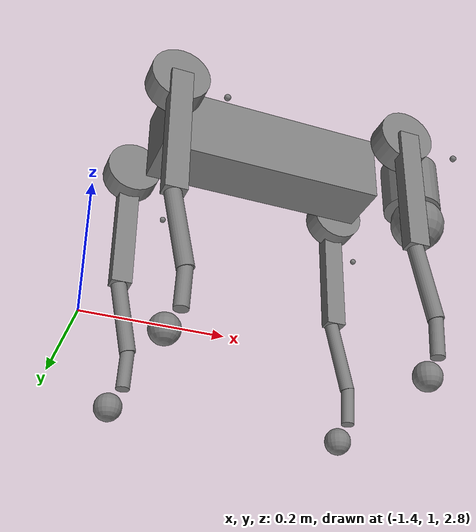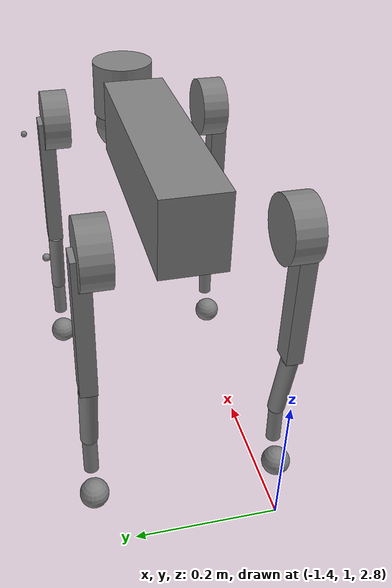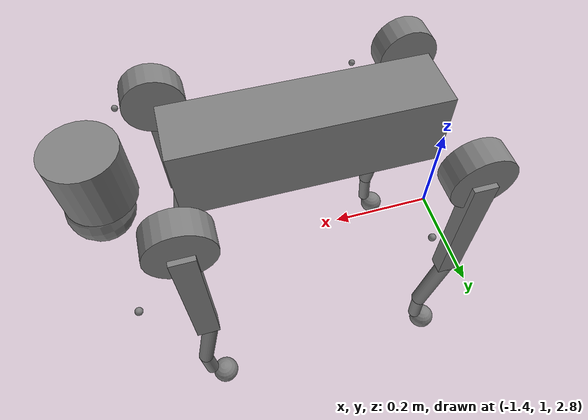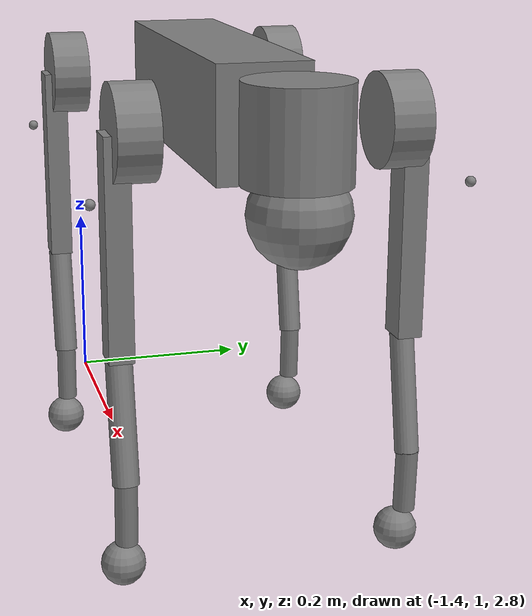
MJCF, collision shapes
<mujoco model="go2 scene">
  <include file="go2.xml"/>

  <statistic center="0 0 0.1" extent="0.8"/>

  <visual>
    <headlight diffuse="0.6 0.6 0.6" ambient="0.3 0.3 0.3" specular="0 0 0"/>
    <rgba haze="0.15 0.25 0.35 1"/>
    <global azimuth="-130" elevation="-20"/>
  </visual>

  <asset>
        <texture type="skybox" builtin="gradient" rgb1="0.2 0.3 0.4" rgb2="0 0 0" width="512" height="3072"/>
        <texture name="moon_tex" type="2d" builtin="flat"
                 width="256" height="256"
                 rgb1="0.6 0.6 0.6" rgb2="0.4 0.4 0.4"/>
        <material name="moon_mat" texture="moon_tex" reflectance="0.2"/>

  </asset>

  <worldbody>
    <light pos="0 0 1.5" dir="0 0 -1" directional="true"/>
    <geom name="floor" size="0 0 0.05" type="plane" material="moon_mat" friction="1.2 0.02 0.01"/>
  </worldbody>
</mujoco>

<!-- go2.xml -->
<mujoco model="go2">
  <compiler angle="radian" meshdir="assets" autolimits="true"/>

  <option cone="elliptic" impratio="100"/>

  <default>
    <default class="go2">
      <geom friction="0.6" margin="0.001" condim="1"/>
      <joint axis="0 1 0" damping="2" armature="0.01" frictionloss="0.2"/>
      <motor ctrlrange="-23.7 23.7"/>
      <default class="abduction">
        <joint axis="1 0 0" range="-1.0472 1.0472"/>
      </default>
      <default class="hip">
        <default class="front_hip">
          <joint range="-1.5708 3.4907"/>
        </default>
        <default class="back_hip">
          <joint range="-0.5236 4.5379"/>
        </default>
      </default>
      <default class="knee">
        <joint range="-2.7227 -0.83776"/>
        <motor ctrlrange="-45.43 45.43"/>
      </default>
      <default class="visual">
        <geom type="mesh" contype="0" conaffinity="0" group="2"/>
      </default>
      <default class="collision">
        <geom group="3"/>
        <default class="foot">
          <geom size="0.022" pos="-0.002 0 -0.213" priority="1" solimp="0.015 1 0.022" condim="6"
            friction="0.8 0.02 0.01"/>
        </default>
      </default>
    </default>
  </default>

  <asset>
    <material name="metal" rgba=".9 .95 .95 1"/>
    <material name="black" rgba="0 0 0 1"/>
    <material name="white" rgba="1 1 1 1"/>
    <material name="gray" rgba="0.671705 0.692426 0.774270 1"/>

    <mesh file="base_0.obj"/>
    <mesh file="base_1.obj"/>
    <mesh file="base_2.obj"/>
    <mesh file="base_3.obj"/>
    <mesh file="base_4.obj"/>
    <mesh file="hip_0.obj"/>
    <mesh file="hip_1.obj"/>
    <mesh file="thigh_0.obj"/>
    <mesh file="thigh_1.obj"/>
    <mesh file="thigh_mirror_0.obj"/>
    <mesh file="thigh_mirror_1.obj"/>
    <mesh file="calf_0.obj"/>
    <mesh file="calf_1.obj"/>
    <mesh file="calf_mirror_0.obj"/>
    <mesh file="calf_mirror_1.obj"/>
    <mesh file="foot.obj"/>
    <mesh file="rocket_L.STL" scale="0.002 0.002 0.002"/>
    <mesh file="rocket_R.STL" scale="0.002 0.002 0.002"/>
  </asset>

  <worldbody>
    <body name="base" pos="-1.1 1.1 3.2" childclass="go2">
      <inertial pos="0.021112 0 -0.005366" quat="-0.000543471 0.713435 -0.00173769 0.700719" mass="6.921"
        diaginertia="0.107027 0.0980771 0.0244531"/>
      <freejoint/>
      <geom mesh="base_0" material="black" class="visual"/>
      <geom mesh="base_1" material="black" class="visual"/>
      <geom mesh="base_2" material="black" class="visual"/>
      <geom mesh="base_3" material="white" class="visual"/>
      <geom mesh="base_4" material="gray" class="visual"/>
      <geom size="0.1881 0.04675 0.057" type="box" class="collision"/>
      <geom size="0.05 0.045" pos="0.285 0 0.01" type="cylinder" class="collision"/>
      <geom size="0.047" pos="0.293 0 -0.06" class="collision"/>
      <site name="imu" pos="-0.02557 0 0.04232"/>

      <body name="FL_hip" pos="0.1934 0.0465 0">
        <inertial pos="-0.0054 0.00194 -0.000105" quat="0.497014 0.499245 0.505462 0.498237" mass="0.678"
          diaginertia="0.00088403 0.000596003 0.000479967"/>
        <joint name="FL_hip_joint" class="abduction"/>
        <geom mesh="hip_0" material="metal" class="visual"/>
        <geom mesh="hip_1" material="gray" class="visual"/>
        <geom size="0.046 0.02" pos="0 0.08 0" quat="1 1 0 0" type="cylinder" class="collision"/>

        <body name="FL_thigh" pos="0 0.0955 0">
          <inertial pos="-0.00374 -0.0223 -0.0327" quat="0.829533 0.0847635 -0.0200632 0.551623" mass="1.152"
            diaginertia="0.00594973 0.00584149 0.000878787"/>
          <joint name="FL_thigh_joint" class="front_hip"/>
          <geom mesh="thigh_0" material="metal" class="visual"/>
          <geom mesh="thigh_1" material="gray" class="visual"/>
          <geom size="0.1065 0.01225 0.017" pos="0 0 -0.1065" quat="0.707107 0 0.707107 0" type="box" class="collision"/>

          <body name = "FL_rocket" pos= "0.04 0.033 -0.03" euler="0 -0.909 0">
            <site name="FL_rocket_site" pos="0 0 -0.03" />
            <geom type="mesh" mesh="rocket_L" pos="0.02 0.02 -0.07" euler="1.5708 -1.5708 0" class="visual" material="metal" density="0"/>
            <geom name="FL_flame" type="cylinder" pos="0 0 -0.12" size="0.01 0.05"
            rgba="1 0.5 0 0.0" contype="0" conaffinity="0" class="visual" density="0"/>
          </body>

          <body name="FL_calf" pos="0 0 -0.213">
            <inertial pos="0.00629595 -0.000622121 -0.141417" quat="0.710672 0.00154099 -0.00450087 0.703508"
              mass="0.241352" diaginertia="0.0014901 0.00146356 5.31397e-05"/>
            <joint name="FL_calf_joint" class="knee"/>
            <geom mesh="calf_0" material="gray" class="visual"/>
            <geom mesh="calf_1" material="black" class="visual"/>
            <geom size="0.012 0.06" pos="0.008 0 -0.06" quat="0.994493 0 -0.104807 0" type="cylinder" class="collision"/>
            <geom size="0.011 0.0325" pos="0.02 0 -0.148" quat="0.999688 0 0.0249974 0" type="cylinder" class="collision"/>
            <geom pos="0 0 -0.213" mesh="foot" class="visual" material="black"/>
            <geom name="FL" class="foot"/>
          </body>

        </body>
      </body>
      <body name="FR_hip" pos="0.1934 -0.0465 0">
        <inertial pos="-0.0054 -0.00194 -0.000105" quat="0.498237 0.505462 0.499245 0.497014" mass="0.678"
          diaginertia="0.00088403 0.000596003 0.000479967"/>
        <joint name="FR_hip_joint" class="abduction"/>
        <geom mesh="hip_0" material="metal" class="visual" quat="4.63268e-05 1 0 0"/>
        <geom mesh="hip_1" material="gray" class="visual" quat="4.63268e-05 1 0 0"/>
        <geom size="0.046 0.02" pos="0 -0.08 0" quat="0.707107 0.707107 0 0" type="cylinder" class="collision"/>
        <body name="FR_thigh" pos="0 -0.0955 0">
          <inertial pos="-0.00374 0.0223 -0.0327" quat="0.551623 -0.0200632 0.0847635 0.829533" mass="1.152"
            diaginertia="0.00594973 0.00584149 0.000878787"/>
          <joint name="FR_thigh_joint" class="front_hip"/>
          <geom mesh="thigh_mirror_0" material="metal" class="visual"/>
          <geom mesh="thigh_mirror_1" material="gray" class="visual"/>
          <geom size="0.1065 0.01225 0.017" pos="0 0 -0.1065" quat="0.707107 0 0.707107 0" type="box" class="collision"/>

          <body name = "FR_rocket" pos= "0.04 -0.033 -0.03" euler="0 -0.909 0">
            <site name="FR_rocket_site" pos="0 0 -0.03"/>
            <geom type="mesh" mesh="rocket_R" pos="0.02 0.02 -0.07" euler="1.5708 -1.5708 0" class="visual" material="metal" density="0"/>
            <geom name="FR_flame" type="cylinder" pos="0 0 -0.12" size="0.01 0.05"
            rgba="1 0.5 0 0.0" contype="0" conaffinity="0" class="visual" density="0"/>
          </body>

          <body name="FR_calf" pos="0 0 -0.213">
            <inertial pos="0.00629595 0.000622121 -0.141417" quat="0.703508 -0.00450087 0.00154099 0.710672"
              mass="0.241352" diaginertia="0.0014901 0.00146356 5.31397e-05"/>
            <joint name="FR_calf_joint" class="knee"/>
            <geom mesh="calf_mirror_0" material="gray" class="visual"/>
            <geom mesh="calf_mirror_1" material="black" class="visual"/>
            <geom size="0.013 0.06" pos="0.01 0 -0.06" quat="0.995004 0 -0.0998334 0" type="cylinder" class="collision"/>
            <geom size="0.011 0.0325" pos="0.02 0 -0.148" quat="0.999688 0 0.0249974 0" type="cylinder" class="collision"/>
            <geom pos="0 0 -0.213" mesh="foot" class="visual" material="black"/>
            <geom name="FR" class="foot"/>
          </body>
        </body>
      </body>
      <body name="RL_hip" pos="-0.1934 0.0465 0">
        <inertial pos="0.0054 0.00194 -0.000105" quat="0.505462 0.498237 0.497014 0.499245" mass="0.678"
          diaginertia="0.00088403 0.000596003 0.000479967"/>
        <joint name="RL_hip_joint" class="abduction"/>
        <geom mesh="hip_0" material="metal" class="visual" quat="4.63268e-05 0 1 0"/>
        <geom mesh="hip_1" material="gray" class="visual" quat="4.63268e-05 0 1 0"/>
        <geom size="0.046 0.02" pos="0 0.08 0" quat="0.707107 0.707107 0 0" type="cylinder" class="collision"/>
        <body name="RL_thigh" pos="0 0.0955 0">
          <inertial pos="-0.00374 -0.0223 -0.0327" quat="0.829533 0.0847635 -0.0200632 0.551623" mass="1.152"
            diaginertia="0.00594973 0.00584149 0.000878787"/>
          <joint name="RL_thigh_joint" class="back_hip"/>
          <geom mesh="thigh_0" material="metal" class="visual"/>
          <geom mesh="thigh_1" material="gray" class="visual"/>
          <geom size="0.1065 0.01225 0.017" pos="0 0 -0.1065" quat="0.707107 0 0.707107 0" type="box" class="collision"/>

          <body name = "RL_rocket" pos= "0.05 0.033 -0.03" euler="0 -0.909 0">
            <site name="RL_rocket_site" pos="0 0 -0.03"/>
            <geom type="mesh" mesh="rocket_L" pos="0.02 0.02 -0.07" euler="1.5708 -1.5708 0" class="visual" material="metal" density="0"/>
            <geom name="RL_flame" type="cylinder" pos="0 0 -0.12" size="0.01 0.05"
            rgba="1 0.5 0 0.0" contype="0" conaffinity="0" class="visual" density="0"/>
          </body>

          <body name="RL_calf" pos="0 0 -0.213">
            <inertial pos="0.00629595 -0.000622121 -0.141417" quat="0.710672 0.00154099 -0.00450087 0.703508"
              mass="0.241352" diaginertia="0.0014901 0.00146356 5.31397e-05"/>
            <joint name="RL_calf_joint" class="knee"/>
            <geom mesh="calf_0" material="gray" class="visual"/>
            <geom mesh="calf_1" material="black" class="visual"/>
            <geom size="0.013 0.06" pos="0.01 0 -0.06" quat="0.995004 0 -0.0998334 0" type="cylinder" class="collision"/>
            <geom size="0.011 0.0325" pos="0.02 0 -0.148" quat="0.999688 0 0.0249974 0" type="cylinder" class="collision"/>
            <geom pos="0 0 -0.213" mesh="foot" class="visual" material="black"/>
            <geom name="RL" class="foot"/>
          </body>
        </body>
      </body>
      <body name="RR_hip" pos="-0.1934 -0.0465 0">
        <inertial pos="0.0054 -0.00194 -0.000105" quat="0.499245 0.497014 0.498237 0.505462" mass="0.678"
          diaginertia="0.00088403 0.000596003 0.000479967"/>
        <joint name="RR_hip_joint" class="abduction"/>
        <geom mesh="hip_0" material="metal" class="visual" quat="2.14617e-09 4.63268e-05 4.63268e-05 -1"/>
        <geom mesh="hip_1" material="gray" class="visual" quat="2.14617e-09 4.63268e-05 4.63268e-05 -1"/>
        <geom size="0.046 0.02" pos="0 -0.08 0" quat="0.707107 0.707107 0 0" type="cylinder" class="collision"/>
        <body name="RR_thigh" pos="0 -0.0955 0">
          <inertial pos="-0.00374 0.0223 -0.0327" quat="0.551623 -0.0200632 0.0847635 0.829533" mass="1.152"
            diaginertia="0.00594973 0.00584149 0.000878787"/>
          <joint name="RR_thigh_joint" class="back_hip"/>
          <geom mesh="thigh_mirror_0" material="metal" class="visual"/>
          <geom mesh="thigh_mirror_1" material="gray" class="visual"/>
          <geom size="0.1065 0.01225 0.017" pos="0 0 -0.1065" quat="0.707107 0 0.707107 0" type="box" class="collision"/>

          <body name = "RR_rocket" pos= "0.04 -0.033 -0.03" euler="0 -0.909 0">
            <site name="RR_rocket_site" pos="0 0 -0.03"/>
            <geom type="mesh" mesh="rocket_R" pos="0.02 0.02 -0.07" euler="1.5708 -1.5708 0" class="visual" material="metal" density="0"/>
            <geom name="RR_flame" type="cylinder" pos="0 0 -0.12" size="0.01 0.05"
            rgba="1 0.5 0 0.0" contype="0" conaffinity="0" class="visual" density="0"/>
          </body>

          <body name="RR_calf" pos="0 0 -0.213">
            <inertial pos="0.00629595 0.000622121 -0.141417" quat="0.703508 -0.00450087 0.00154099 0.710672"
              mass="0.241352" diaginertia="0.0014901 0.00146356 5.31397e-05"/>
            <joint name="RR_calf_joint" class="knee"/>
            <geom mesh="calf_mirror_0" material="gray" class="visual"/>
            <geom mesh="calf_mirror_1" material="black" class="visual"/>
            <geom size="0.013 0.06" pos="0.01 0 -0.06" quat="0.995004 0 -0.0998334 0" type="cylinder" class="collision"/>
            <geom size="0.011 0.0325" pos="0.02 0 -0.148" quat="0.999688 0 0.0249974 0" type="cylinder" class="collision"/>
            <geom pos="0 0 -0.213" mesh="foot" class="visual" material="black"/>
            <geom name="RR" class="foot"/>
          </body>
        </body>
      </body>
    </body>
  </worldbody>

  <actuator>
    <motor class="abduction" name="FL_hip" joint="FL_hip_joint"/>
    <motor class="hip" name="FL_thigh" joint="FL_thigh_joint"/>
    <motor class="knee" name="FL_calf" joint="FL_calf_joint"/>
    <motor class="abduction" name="FR_hip" joint="FR_hip_joint"/>
    <motor class="hip" name="FR_thigh" joint="FR_thigh_joint"/>
    <motor class="knee" name="FR_calf" joint="FR_calf_joint"/>
    <motor class="abduction" name="RL_hip" joint="RL_hip_joint"/>
    <motor class="hip" name="RL_thigh" joint="RL_thigh_joint"/>
    <motor class="knee" name="RL_calf" joint="RL_calf_joint"/>
    <motor class="abduction" name="RR_hip" joint="RR_hip_joint"/>
    <motor class="hip" name="RR_thigh" joint="RR_thigh_joint"/>
    <motor class="knee" name="RR_calf" joint="RR_calf_joint"/>
    <general name="FL_rocket_thruster" site="FL_rocket_site" ctrllimited="true" ctrlrange="0 100" gear="0 0 1 0 0 0"/>
    <general name="FR_rocket_thruster" site="FR_rocket_site" ctrllimited="true" ctrlrange="0 100" gear="0 0 1 0 0 0"/>
    <general name="RL_rocket_thruster" site="RL_rocket_site" ctrllimited="true" ctrlrange="0 100" gear="0 0 1 0 0 0"/>
    <general name="RR_rocket_thruster" site="RR_rocket_site" ctrllimited="true" ctrlrange="0 100" gear="0 0 1 0 0 0"/>
  </actuator>

</mujoco>
